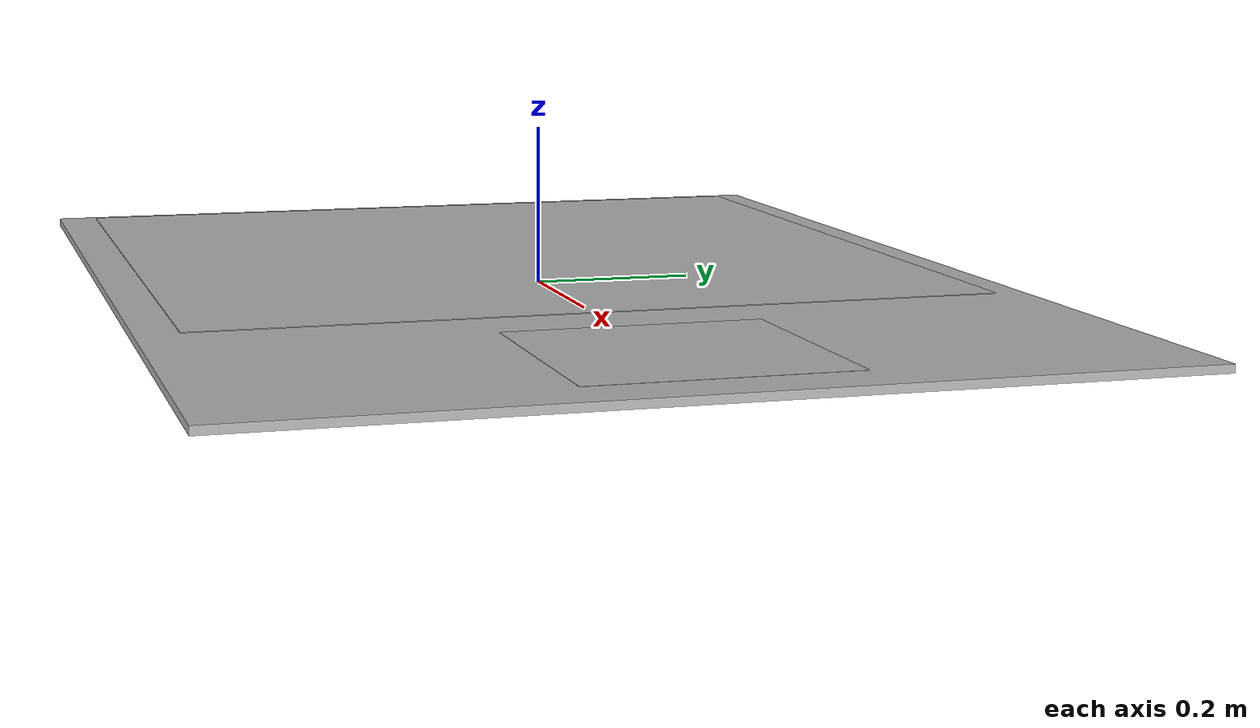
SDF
<?xml version="1.0" ?>
<sdf version="1.6">
	<model name="landing_pad">
		<!--plugin name="landing_pad_velocity_controller" filename="liblanding_pad_velocity_controller_plugin.so"/-->
		<static>false</static>
		<link name="link">
			<gravity>true</gravity>
			<collision name="collision_1">
				<pose>0 0 0.01 0 0 -1</pose>
				<geometry>
					<box>
						<size>1.5063 1.1 0.01</size>
					</box>
				</geometry>
				<surface>
					<contact>
						<collide_without_contact>false</collide_without_contact>
						<ode>
							<min_depth>0</min_depth>
						</ode>
					</contact>
					<friction>
						<ode>
							<mu>100000</mu>
							<mu2>100000</mu2>
						</ode>
					</friction>
				</surface>
			</collision>
			<collision name="collision_2">
				<pose>0 0 -0.01 0 0 1</pose>
				<geometry>
					<box>
						<size>1.5063 1.1 0.01</size>
					</box>
				</geometry>
				<surface>
					<contact>
						<collide_without_contact>false</collide_without_contact>
						<ode>
							<min_depth>0</min_depth>
						</ode>
					</contact>
					<!-- We don't want friction on the bottom, so it will slide smoothly on the ground. -->
					<friction>
						<ode>
							<mu>0</mu>
							<mu2>0</mu2>
						</ode>
					</friction>
				</surface>
			</collision>
			<visual name="visual">
				<geometry>
					<box>
						<size>1.5063 1.1 0.01</size>
					</box>
				</geometry>
			</visual>

			<visual name="landing_pad_apriltag">
				<pose>0.5468 0 0.01 0 0 1.5708</pose>
				<cast_shadows>true</cast_shadows>
				<geometry>
					<plane>
						<normal>0 0 1</normal>
						<size>0.3125 0.3125</size>
					</plane>
				</geometry>
				<material>
					<script>
						<uri>file://media/materials/scripts/gazebo.material</uri>
					<name>Gazebo/LandingPadAprilTag</name>
					</script>
				</material>
			</visual>

			<visual name="landing_pad_whycon">
				<pose>-0.2032 0 0.01 0 0 3.1415926</pose>
				<cast_shadows>true</cast_shadows>
				<geometry>
					<plane>
						<normal>0 0 1</normal>
						<size>1 1</size>
					</plane>
				</geometry>
				<material>
					<script>
						<uri>file://media/materials/scripts/gazebo.material</uri>
						<name>Gazebo/LandingPadWhyCon</name>
					</script>
				</material>
			</visual>
		</link>
	</model>
</sdf>
